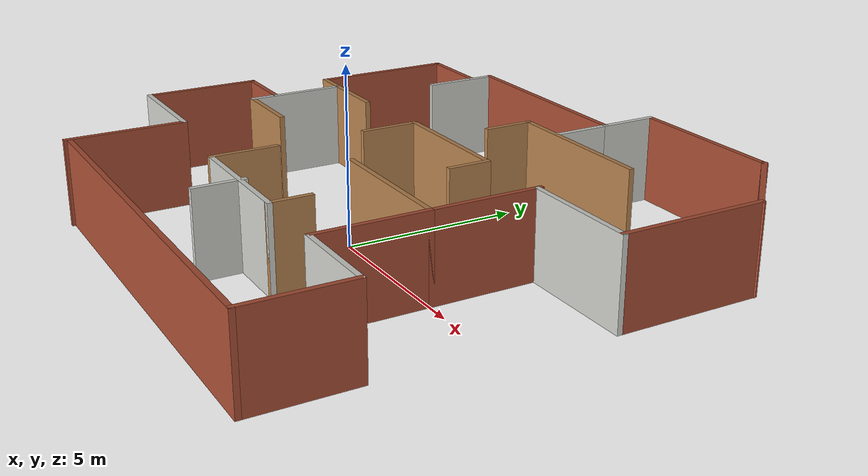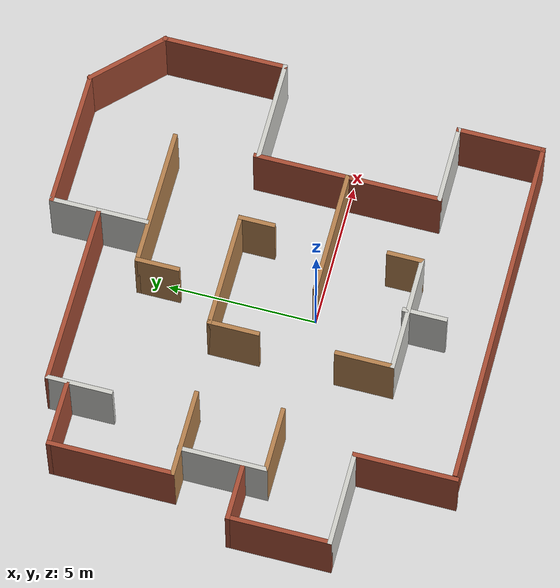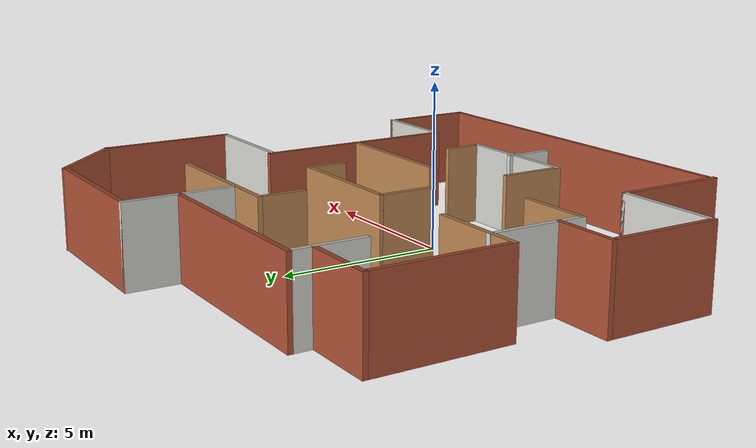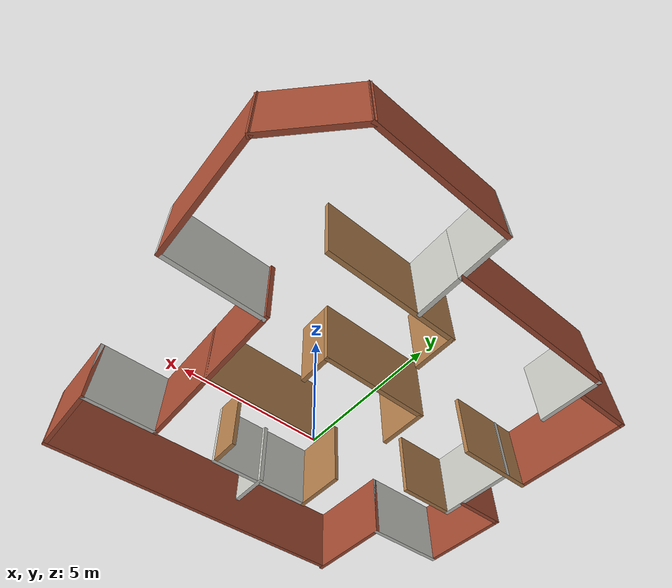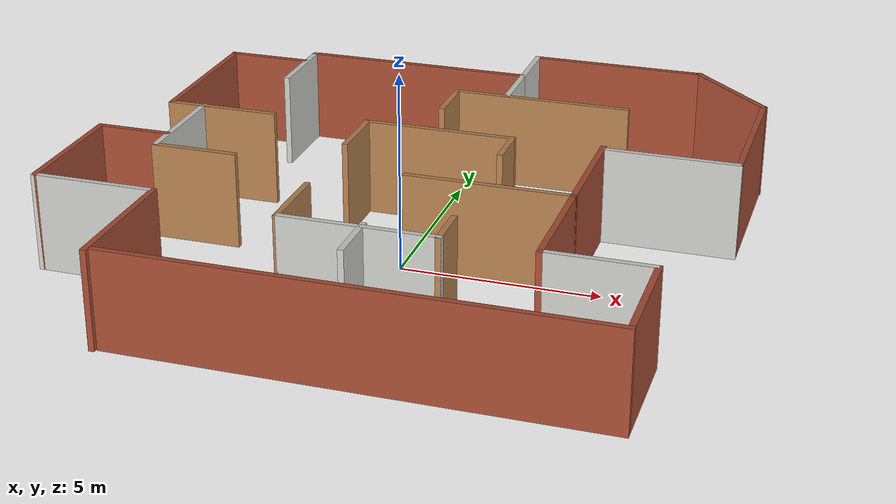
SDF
<?xml version='1.0'?>
<sdf version='1.6'>
  <model name='dat160_w5'>
    <pose frame=''>-0.323526 1.61345 0 0 -0 0</pose>
    <link name='Wall_11'>
      <collision name='Wall_11_Collision'>
        <geometry>
          <box>
            <size>4.25 0.15 2.5</size>
          </box>
        </geometry>
        <pose frame=''>0 0 1.25 0 -0 0</pose>
      </collision>
      <visual name='Wall_11_Visual'>
        <pose frame=''>0 0 1.25 0 -0 0</pose>
        <geometry>
          <box>
            <size>4.25 0.15 2.5</size>
          </box>
        </geometry>
        <material>
          <script>
            <uri>file://media/materials/scripts/gazebo.material</uri>
            <name>Gazebo/Wood</name>
          </script>
          <ambient>1 1 1 1</ambient>
        </material>
        <meta>
          <layer>0</layer>
        </meta>
      </visual>
      <pose frame=''>2.50212 -1.56245 0 0 -0 0</pose>
    </link>
    <link name='Wall_163'>
      <collision name='Wall_163_Collision'>
        <geometry>
          <box>
            <size>1.75 0.15 2.5</size>
          </box>
        </geometry>
        <pose frame=''>0 0 1.25 0 -0 0</pose>
      </collision>
      <visual name='Wall_163_Visual'>
        <pose frame=''>0 0 1.25 0 -0 0</pose>
        <geometry>
          <box>
            <size>1.75 0.15 2.5</size>
          </box>
        </geometry>
        <material>
          <script>
            <uri>file://media/materials/scripts/gazebo.material</uri>
            <name>Gazebo/Wood</name>
          </script>
          <ambient>1 1 1 1</ambient>
        </material>
        <meta>
          <layer>0</layer>
        </meta>
      </visual>
      <pose frame=''>-1.59211 0.643376 0 0 -0 -1.5708</pose>
    </link>
    <link name='Wall_167'>
      <collision name='Wall_167_Collision'>
        <geometry>
          <box>
            <size>2 0.15 2.5</size>
          </box>
        </geometry>
        <pose frame=''>0 0 1.25 0 -0 0</pose>
      </collision>
      <visual name='Wall_167_Visual'>
        <pose frame=''>0 0 1.25 0 -0 0</pose>
        <geometry>
          <box>
            <size>2 0.15 2.5</size>
          </box>
        </geometry>
        <material>
          <script>
            <uri>file://media/materials/scripts/gazebo.material</uri>
            <name>Gazebo/Wood</name>
          </script>
          <ambient>1 1 1 1</ambient>
        </material>
        <meta>
          <layer>0</layer>
        </meta>
      </visual>
      <pose frame=''>-1.59211 -3.73162 0 0 -0 -1.5708</pose>
    </link>
    <link name='Wall_184'>
      <collision name='Wall_184_Collision'>
        <geometry>
          <box>
            <size>3.25 0.15 2.5</size>
          </box>
        </geometry>
        <pose frame=''>0 0 1.25 0 -0 0</pose>
      </collision>
      <visual name='Wall_184_Visual'>
        <pose frame=''>0 0 1.25 0 -0 0</pose>
        <geometry>
          <box>
            <size>3.25 0.15 2.5</size>
          </box>
        </geometry>
        <material>
          <script>
            <uri>file://media/materials/scripts/gazebo.material</uri>
            <name>Gazebo/Bricks</name>
          </script>
          <ambient>1 1 1 1</ambient>
        </material>
        <meta>
          <layer>0</layer>
        </meta>
      </visual>
      <pose frame=''>4.55212 -3.11245 0 0 -0 -1.5708</pose>
    </link>
    <link name='Wall_185'>
      <collision name='Wall_185_Collision'>
        <geometry>
          <box>
            <size>2.75 0.15 2.5</size>
          </box>
        </geometry>
        <pose frame=''>0 0 1.25 0 -0 0</pose>
      </collision>
      <visual name='Wall_185_Visual'>
        <pose frame=''>0 0 1.25 0 -0 0</pose>
        <geometry>
          <box>
            <size>2.75 0.15 2.5</size>
          </box>
        </geometry>
        <material>
          <script>
            <uri>file://media/materials/scripts/gazebo.material</uri>
            <name>Gazebo/CeilingTiled</name>
          </script>
          <ambient>1 1 1 1</ambient>
        </material>
        <meta>
          <layer>0</layer>
        </meta>
      </visual>
      <pose frame=''>5.85212 -4.66245 0 0 -0 0</pose>
    </link>
    <link name='Wall_186'>
      <collision name='Wall_186_Collision'>
        <geometry>
          <box>
            <size>3 0.15 2.5</size>
          </box>
        </geometry>
        <pose frame=''>0 0 1.25 0 -0 0</pose>
      </collision>
      <visual name='Wall_186_Visual'>
        <pose frame=''>0 0 1.25 0 -0 0</pose>
        <geometry>
          <box>
            <size>3 0.15 2.5</size>
          </box>
        </geometry>
        <material>
          <script>
            <uri>file://media/materials/scripts/gazebo.material</uri>
            <name>Gazebo/Bricks</name>
          </script>
          <ambient>1 1 1 1</ambient>
        </material>
        <meta>
          <layer>0</layer>
        </meta>
      </visual>
      <pose frame=''>7.15212 -6.08745 0 0 -0 -1.5708</pose>
    </link>
    <link name='Wall_187'>
      <collision name='Wall_187_Collision'>
        <geometry>
          <box>
            <size>12 0.15 2.5</size>
          </box>
        </geometry>
        <pose frame=''>0 0 1.25 0 -0 0</pose>
      </collision>
      <visual name='Wall_187_Visual'>
        <pose frame=''>0 0 1.25 0 -0 0</pose>
        <geometry>
          <box>
            <size>12 0.15 2.5</size>
          </box>
        </geometry>
        <material>
          <script>
            <uri>file://media/materials/scripts/gazebo.material</uri>
            <name>Gazebo/Bricks</name>
          </script>
          <ambient>1 1 1 1</ambient>
        </material>
        <meta>
          <layer>0</layer>
        </meta>
      </visual>
      <pose frame=''>1.22712 -7.51245 0 0 -0 3.14159</pose>
    </link>
    <link name='Wall_189'>
      <collision name='Wall_189_Collision'>
        <geometry>
          <box>
            <size>1.5 0.15 2.5</size>
          </box>
        </geometry>
        <pose frame=''>0 0 1.25 0 -0 0</pose>
      </collision>
      <visual name='Wall_189_Visual'>
        <pose frame=''>0 0 1.25 0 -0 0</pose>
        <geometry>
          <box>
            <size>1.5 0.15 2.5</size>
          </box>
        </geometry>
        <material>
          <script>
            <uri>file://media/materials/scripts/gazebo.material</uri>
            <name>Gazebo/CeilingTiled</name>
          </script>
          <ambient>1 1 1 1</ambient>
        </material>
        <meta>
          <layer>0</layer>
        </meta>
      </visual>
      <pose frame=''>0.43373 -5.21115 0 0 -0 -1.5708</pose>
    </link>
    <link name='Wall_191'>
      <collision name='Wall_191_Collision'>
        <geometry>
          <box>
            <size>4.75 0.15 2.5</size>
          </box>
        </geometry>
        <pose frame=''>0 0 1.25 0 -0 0</pose>
      </collision>
      <visual name='Wall_191_Visual'>
        <pose frame=''>0 0 1.25 0 -0 0</pose>
        <geometry>
          <box>
            <size>4.75 0.15 2.5</size>
          </box>
        </geometry>
        <material>
          <script>
            <uri>file://media/materials/scripts/gazebo.material</uri>
            <name>Gazebo/Wood</name>
          </script>
          <ambient>1 1 1 1</ambient>
        </material>
        <meta>
          <layer>0</layer>
        </meta>
      </visual>
      <pose frame=''>2.25212 4.28755 0 0 -0 3.14159</pose>
    </link>
    <link name='Wall_192'>
      <collision name='Wall_192_Collision'>
        <geometry>
          <box>
            <size>1.5 0.15 2.5</size>
          </box>
        </geometry>
        <pose frame=''>0 0 1.25 0 -0 0</pose>
      </collision>
      <visual name='Wall_192_Visual'>
        <pose frame=''>0 0 1.25 0 -0 0</pose>
        <geometry>
          <box>
            <size>1.5 0.15 2.5</size>
          </box>
        </geometry>
        <material>
          <script>
            <uri>file://media/materials/scripts/gazebo.material</uri>
            <name>Gazebo/Wood</name>
          </script>
          <ambient>1 1 1 1</ambient>
        </material>
        <meta>
          <layer>0</layer>
        </meta>
      </visual>
      <pose frame=''>-0.047882 3.61255 0 0 -0 -1.5708</pose>
    </link>
    <link name='Wall_194'>
      <collision name='Wall_194_Collision'>
        <geometry>
          <box>
            <size>1.75 0.15 2.5</size>
          </box>
        </geometry>
        <pose frame=''>0 0 1.25 0 -0 0</pose>
      </collision>
      <visual name='Wall_194_Visual'>
        <pose frame=''>0 0 1.25 0 -0 0</pose>
        <geometry>
          <box>
            <size>1.75 0.15 2.5</size>
          </box>
        </geometry>
        <material>
          <script>
            <uri>file://media/materials/scripts/gazebo.material</uri>
            <name>Gazebo/CeilingTiled</name>
          </script>
          <ambient>1 1 1 1</ambient>
        </material>
        <meta>
          <layer>0</layer>
        </meta>
      </visual>
      <pose frame=''>1.32375 5.16408 0 0 -0 1.5708</pose>
    </link>
    <link name='Wall_195'>
      <collision name='Wall_195_Collision'>
        <geometry>
          <box>
            <size>6.25 0.15 2.5</size>
          </box>
        </geometry>
        <pose frame=''>0 0 1.25 0 -0 0</pose>
      </collision>
      <visual name='Wall_195_Visual'>
        <pose frame=''>0 0 1.25 0 -0 0</pose>
        <geometry>
          <box>
            <size>6.25 0.15 2.5</size>
          </box>
        </geometry>
        <material>
          <script>
            <uri>file://media/materials/scripts/gazebo.material</uri>
            <name>Gazebo/Bricks</name>
          </script>
          <ambient>1 1 1 1</ambient>
        </material>
        <meta>
          <layer>0</layer>
        </meta>
      </visual>
      <pose frame=''>-1.72625 5.96408 0 0 -0 3.14159</pose>
    </link>
    <link name='Wall_196'>
      <collision name='Wall_196_Collision'>
        <geometry>
          <box>
            <size>2.25 0.15 2.5</size>
          </box>
        </geometry>
        <pose frame=''>0 0 1.25 0 -0 0</pose>
      </collision>
      <visual name='Wall_196_Visual'>
        <pose frame=''>0 0 1.25 0 -0 0</pose>
        <geometry>
          <box>
            <size>2.25 0.15 2.5</size>
          </box>
        </geometry>
        <material>
          <script>
            <uri>file://media/materials/scripts/gazebo.material</uri>
            <name>Gazebo/CeilingTiled</name>
          </script>
          <ambient>1 1 1 1</ambient>
        </material>
        <meta>
          <layer>0</layer>
        </meta>
      </visual>
      <pose frame=''>-4.77625 4.91408 0 0 -0 -1.5708</pose>
    </link>
    <link name='Wall_198'>
      <collision name='Wall_198_Collision'>
        <geometry>
          <box>
            <size>2.25 0.15 2.5</size>
          </box>
        </geometry>
        <pose frame=''>0 0 1.25 0 -0 0</pose>
      </collision>
      <visual name='Wall_198_Visual'>
        <pose frame=''>0 0 1.25 0 -0 0</pose>
        <geometry>
          <box>
            <size>2.25 0.15 2.5</size>
          </box>
        </geometry>
        <material>
          <script>
            <uri>file://media/materials/scripts/gazebo.material</uri>
            <name>Gazebo/Bricks</name>
          </script>
          <ambient>1 1 1 1</ambient>
        </material>
        <meta>
          <layer>0</layer>
        </meta>
      </visual>
      <pose frame=''>-5.91595 5.29456 0 0 -0 3.14159</pose>
    </link>
    <link name='Wall_199'>
      <collision name='Wall_199_Collision'>
        <geometry>
          <box>
            <size>4.25 0.15 2.5</size>
          </box>
        </geometry>
        <pose frame=''>0 0 1.25 0 -0 0</pose>
      </collision>
      <visual name='Wall_199_Visual'>
        <pose frame=''>0 0 1.25 0 -0 0</pose>
        <geometry>
          <box>
            <size>4.25 0.15 2.5</size>
          </box>
        </geometry>
        <material>
          <script>
            <uri>file://media/materials/scripts/gazebo.material</uri>
            <name>Gazebo/Bricks</name>
          </script>
          <ambient>1 1 1 1</ambient>
        </material>
        <meta>
          <layer>0</layer>
        </meta>
      </visual>
      <pose frame=''>-6.96595 3.24456 0 0 -0 -1.5708</pose>
    </link>
    <link name='Wall_200'>
      <collision name='Wall_200_Collision'>
        <geometry>
          <box>
            <size>3 0.15 2.5</size>
          </box>
        </geometry>
        <pose frame=''>0 0 1.25 0 -0 0</pose>
      </collision>
      <visual name='Wall_200_Visual'>
        <pose frame=''>0 0 1.25 0 -0 0</pose>
        <geometry>
          <box>
            <size>3 0.15 2.5</size>
          </box>
        </geometry>
        <material>
          <script>
            <uri>file://media/materials/scripts/gazebo.material</uri>
            <name>Gazebo/Wood</name>
          </script>
          <ambient>1 1 1 1</ambient>
        </material>
        <meta>
          <layer>0</layer>
        </meta>
      </visual>
      <pose frame=''>-5.54095 1.19456 0 0 -0 0</pose>
    </link>
    <link name='Wall_202'>
      <collision name='Wall_202_Collision'>
        <geometry>
          <box>
            <size>3 0.15 2.5</size>
          </box>
        </geometry>
        <pose frame=''>0 0 1.25 0 -0 0</pose>
      </collision>
      <visual name='Wall_202_Visual'>
        <pose frame=''>0 0 1.25 0 -0 0</pose>
        <geometry>
          <box>
            <size>3 0.15 2.5</size>
          </box>
        </geometry>
        <material>
          <script>
            <uri>file://media/materials/scripts/gazebo.material</uri>
            <name>Gazebo/CeilingTiled</name>
          </script>
          <ambient>1 1 1 1</ambient>
        </material>
        <meta>
          <layer>0</layer>
        </meta>
      </visual>
      <pose frame=''>-6.07962 -0.216456 0 0 -0 -1.5708</pose>
    </link>
    <link name='Wall_203'>
      <collision name='Wall_203_Collision'>
        <geometry>
          <box>
            <size>2.25 0.15 2.5</size>
          </box>
        </geometry>
        <pose frame=''>0 0 1.25 0 -0 0</pose>
      </collision>
      <visual name='Wall_203_Visual'>
        <pose frame=''>0 0 1.25 0 -0 0</pose>
        <geometry>
          <box>
            <size>2.25 0.15 2.5</size>
          </box>
        </geometry>
        <material>
          <script>
            <uri>file://media/materials/scripts/gazebo.material</uri>
            <name>Gazebo/Wood</name>
          </script>
          <ambient>1 1 1 1</ambient>
        </material>
        <meta>
          <layer>0</layer>
        </meta>
      </visual>
      <pose frame=''>-5.02962 -1.64146 0 0 -0 0</pose>
    </link>
    <link name='Wall_205'>
      <collision name='Wall_205_Collision'>
        <geometry>
          <box>
            <size>2 0.15 2.5</size>
          </box>
        </geometry>
        <pose frame=''>0 0 1.25 0 -0 0</pose>
      </collision>
      <visual name='Wall_205_Visual'>
        <pose frame=''>0 0 1.25 0 -0 0</pose>
        <geometry>
          <box>
            <size>2 0.15 2.5</size>
          </box>
        </geometry>
        <material>
          <script>
            <uri>file://media/materials/scripts/gazebo.material</uri>
            <name>Gazebo/Bricks</name>
          </script>
          <ambient>1 1 1 1</ambient>
        </material>
        <meta>
          <layer>0</layer>
        </meta>
      </visual>
      <pose frame=''>-7.04507 -0.895146 0 0 -0 3.14159</pose>
    </link>
    <link name='Wall_206'>
      <collision name='Wall_206_Collision'>
        <geometry>
          <box>
            <size>3.5 0.15 2.5</size>
          </box>
        </geometry>
        <pose frame=''>0 0 1.25 0 -0 0</pose>
      </collision>
      <visual name='Wall_206_Visual'>
        <pose frame=''>0 0 1.25 0 -0 0</pose>
        <geometry>
          <box>
            <size>3.5 0.15 2.5</size>
          </box>
        </geometry>
        <material>
          <script>
            <uri>file://media/materials/scripts/gazebo.material</uri>
            <name>Gazebo/Bricks</name>
          </script>
          <ambient>1 1 1 1</ambient>
        </material>
        <meta>
          <layer>0</layer>
        </meta>
      </visual>
      <pose frame=''>-7.97007 -2.57015 0 0 -0 -1.5708</pose>
    </link>
    <link name='Wall_207'>
      <collision name='Wall_207_Collision'>
        <geometry>
          <box>
            <size>3.25 0.15 2.5</size>
          </box>
        </geometry>
        <pose frame=''>0 0 1.25 0 -0 0</pose>
      </collision>
      <visual name='Wall_207_Visual'>
        <pose frame=''>0 0 1.25 0 -0 0</pose>
        <geometry>
          <box>
            <size>3.25 0.15 2.5</size>
          </box>
        </geometry>
        <material>
          <script>
            <uri>file://media/materials/scripts/gazebo.material</uri>
            <name>Gazebo/CeilingTiled</name>
          </script>
          <ambient>1 1 1 1</ambient>
        </material>
        <meta>
          <layer>0</layer>
        </meta>
      </visual>
      <pose frame=''>-6.42007 -4.24515 0 0 -0 0</pose>
    </link>
    <link name='Wall_208'>
      <collision name='Wall_208_Collision'>
        <geometry>
          <box>
            <size>3.5 0.15 2.5</size>
          </box>
        </geometry>
        <pose frame=''>0 0 1.25 0 -0 0</pose>
      </collision>
      <visual name='Wall_208_Visual'>
        <pose frame=''>0 0 1.25 0 -0 0</pose>
        <geometry>
          <box>
            <size>3.5 0.15 2.5</size>
          </box>
        </geometry>
        <material>
          <script>
            <uri>file://media/materials/scripts/gazebo.material</uri>
            <name>Gazebo/Bricks</name>
          </script>
          <ambient>1 1 1 1</ambient>
        </material>
        <meta>
          <layer>0</layer>
        </meta>
      </visual>
      <pose frame=''>-4.87007 -5.92015 0 0 -0 -1.5708</pose>
    </link>
    <link name='Wall_211'>
      <collision name='Wall_211_Collision'>
        <geometry>
          <box>
            <size>3.25 0.15 2.5</size>
          </box>
        </geometry>
        <pose frame=''>0 0 1.25 0 -0 0</pose>
      </collision>
      <visual name='Wall_211_Visual'>
        <pose frame=''>0 0 1.25 0 -0 0</pose>
        <geometry>
          <box>
            <size>3.25 0.15 2.5</size>
          </box>
        </geometry>
        <material>
          <script>
            <uri>file://media/materials/scripts/gazebo.material</uri>
            <name>Gazebo/Bricks</name>
          </script>
          <ambient>1 1 1 1</ambient>
        </material>
        <meta>
          <layer>0</layer>
        </meta>
      </visual>
      <pose frame=''>4.55212 -0.012446 0 0 -0 1.5708</pose>
    </link>
    <link name='Wall_213'>
      <collision name='Wall_213_Collision'>
        <geometry>
          <box>
            <size>1.75 0.15 2.5</size>
          </box>
        </geometry>
        <pose frame=''>0 0 1.25 0 -0 0</pose>
      </collision>
      <visual name='Wall_213_Visual'>
        <pose frame=''>0 0 1.25 0 -0 0</pose>
        <geometry>
          <box>
            <size>1.75 0.15 2.5</size>
          </box>
        </geometry>
        <material>
          <script>
            <uri>file://media/materials/scripts/gazebo.material</uri>
            <name>Gazebo/CeilingTiled</name>
          </script>
          <ambient>1 1 1 1</ambient>
        </material>
        <meta>
          <layer>0</layer>
        </meta>
      </visual>
      <pose frame=''>1.32375 6.76408 0 0 -0 1.5708</pose>
    </link>
    <link name='Wall_214'>
      <collision name='Wall_214_Collision'>
        <geometry>
          <box>
            <size>4.75 0.15 2.5</size>
          </box>
        </geometry>
        <pose frame=''>0 0 1.25 0 -0 0</pose>
      </collision>
      <visual name='Wall_214_Visual'>
        <pose frame=''>0 0 1.25 0 -0 0</pose>
        <geometry>
          <box>
            <size>4.75 0.15 2.5</size>
          </box>
        </geometry>
        <material>
          <script>
            <uri>file://media/materials/scripts/gazebo.material</uri>
            <name>Gazebo/Bricks</name>
          </script>
          <ambient>1 1 1 1</ambient>
        </material>
        <meta>
          <layer>0</layer>
        </meta>
      </visual>
      <pose frame=''>3.62375 7.56408 0 0 -0 0</pose>
    </link>
    <link name='Wall_215'>
      <collision name='Wall_215_Collision'>
        <geometry>
          <box>
            <size>3 0.15 2.5</size>
          </box>
        </geometry>
        <pose frame=''>0 0 1.25 0 -0 0</pose>
      </collision>
      <visual name='Wall_215_Visual'>
        <pose frame=''>0 0 1.25 0 -0 0</pose>
        <geometry>
          <box>
            <size>3 0.15 2.5</size>
          </box>
        </geometry>
        <material>
          <script>
            <uri>file://media/materials/scripts/gazebo.material</uri>
            <name>Gazebo/Bricks</name>
          </script>
          <ambient>1 1 1 1</ambient>
        </material>
        <meta>
          <layer>0</layer>
        </meta>
      </visual>
      <pose frame=''>6.93138 6.55645 0 0 -0 -0.785398</pose>
    </link>
    <link name='Wall_216'>
      <collision name='Wall_216_Collision'>
        <geometry>
          <box>
            <size>4.25 0.15 2.5</size>
          </box>
        </geometry>
        <pose frame=''>0 0 1.25 0 -0 0</pose>
      </collision>
      <visual name='Wall_216_Visual'>
        <pose frame=''>0 0 1.25 0 -0 0</pose>
        <geometry>
          <box>
            <size>4.25 0.15 2.5</size>
          </box>
        </geometry>
        <material>
          <script>
            <uri>file://media/materials/scripts/gazebo.material</uri>
            <name>Gazebo/Bricks</name>
          </script>
          <ambient>1 1 1 1</ambient>
        </material>
        <meta>
          <layer>0</layer>
        </meta>
      </visual>
      <pose frame=''>7.93901 3.49883 0 0 -0 -1.5708</pose>
    </link>
    <link name='Wall_217'>
      <collision name='Wall_217_Collision'>
        <geometry>
          <box>
            <size>3.5 0.15 2.5</size>
          </box>
        </geometry>
        <pose frame=''>0 0 1.25 0 -0 0</pose>
      </collision>
      <visual name='Wall_217_Visual'>
        <pose frame=''>0 0 1.25 0 -0 0</pose>
        <geometry>
          <box>
            <size>3.5 0.15 2.5</size>
          </box>
        </geometry>
        <material>
          <script>
            <uri>file://media/materials/scripts/gazebo.material</uri>
            <name>Gazebo/CeilingTiled</name>
          </script>
          <ambient>1 1 1 1</ambient>
        </material>
        <meta>
          <layer>0</layer>
        </meta>
      </visual>
      <pose frame=''>6.26401 1.44883 0 0 -0 3.14159</pose>
    </link>
    <link name='Wall_3'>
      <collision name='Wall_3_Collision'>
        <geometry>
          <box>
            <size>4 0.15 2.5</size>
          </box>
        </geometry>
        <pose frame=''>0 0 1.25 0 -0 0</pose>
      </collision>
      <visual name='Wall_3_Visual'>
        <pose frame=''>0 0 1.25 0 -0 0</pose>
        <geometry>
          <box>
            <size>4 0.15 2.5</size>
          </box>
        </geometry>
        <material>
          <script>
            <uri>file://media/materials/scripts/gazebo.material</uri>
            <name>Gazebo/Wood</name>
          </script>
          <ambient>1 1 1 1</ambient>
        </material>
        <meta>
          <layer>0</layer>
        </meta>
      </visual>
      <pose frame=''>0.332893 1.44338 0 0 -0 0</pose>
    </link>
    <link name='Wall_6'>
      <collision name='Wall_6_Collision'>
        <geometry>
          <box>
            <size>4 0.15 2.5</size>
          </box>
        </geometry>
        <pose frame=''>0 0 1.25 0 -0 0</pose>
      </collision>
      <visual name='Wall_6_Visual'>
        <pose frame=''>0 0 1.25 0 -0 0</pose>
        <geometry>
          <box>
            <size>4 0.15 2.5</size>
          </box>
        </geometry>
        <material>
          <script>
            <uri>file://media/materials/scripts/gazebo.material</uri>
            <name>Gazebo/CeilingTiled</name>
          </script>
          <ambient>1 1 1 1</ambient>
        </material>
        <meta>
          <layer>0</layer>
        </meta>
      </visual>
      <pose frame=''>0.332893 -4.65662 0 0 -0 0</pose>
    </link>
    <link name='Wall_7'>
      <collision name='Wall_7_Collision'>
        <geometry>
          <box>
            <size>1.25 0.15 2.5</size>
          </box>
        </geometry>
        <pose frame=''>0 0 1.25 0 -0 0</pose>
      </collision>
      <visual name='Wall_7_Visual'>
        <pose frame=''>0 0 1.25 0 -0 0</pose>
        <geometry>
          <box>
            <size>1.25 0.15 2.5</size>
          </box>
        </geometry>
        <material>
          <script>
            <uri>file://media/materials/scripts/gazebo.material</uri>
            <name>Gazebo/Wood</name>
          </script>
          <ambient>1 1 1 1</ambient>
        </material>
        <meta>
          <layer>0</layer>
        </meta>
      </visual>
      <pose frame=''>2.25789 -4.10662 0 0 -0 1.5708</pose>
    </link>
    <link name='Wall_9'>
      <collision name='Wall_9_Collision'>
        <geometry>
          <box>
            <size>1.25 0.15 2.5</size>
          </box>
        </geometry>
        <pose frame=''>0 0 1.25 0 -0 0</pose>
      </collision>
      <visual name='Wall_9_Visual'>
        <pose frame=''>0 0 1.25 0 -0 0</pose>
        <geometry>
          <box>
            <size>1.25 0.15 2.5</size>
          </box>
        </geometry>
        <material>
          <script>
            <uri>file://media/materials/scripts/gazebo.material</uri>
            <name>Gazebo/Wood</name>
          </script>
          <ambient>1 1 1 1</ambient>
        </material>
        <meta>
          <layer>0</layer>
        </meta>
      </visual>
      <pose frame=''>2.25789 0.893376 0 0 -0 -1.5708</pose>
    </link>
    <static>1</static>
  </model>
</sdf>
